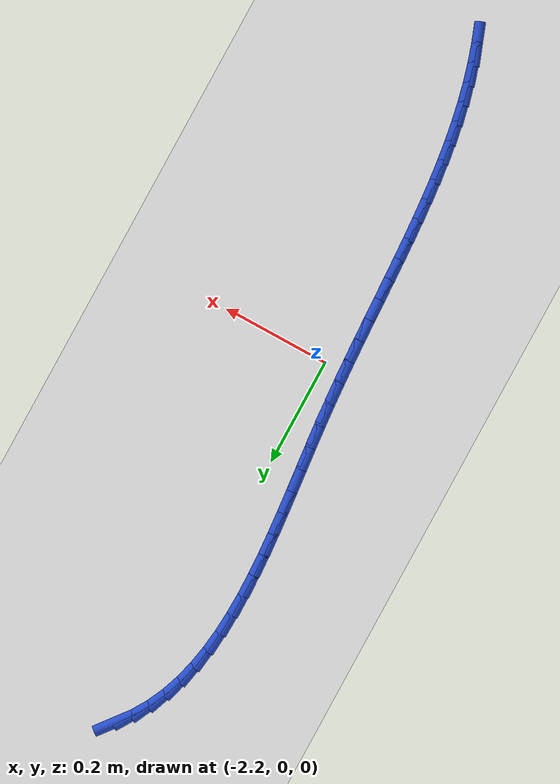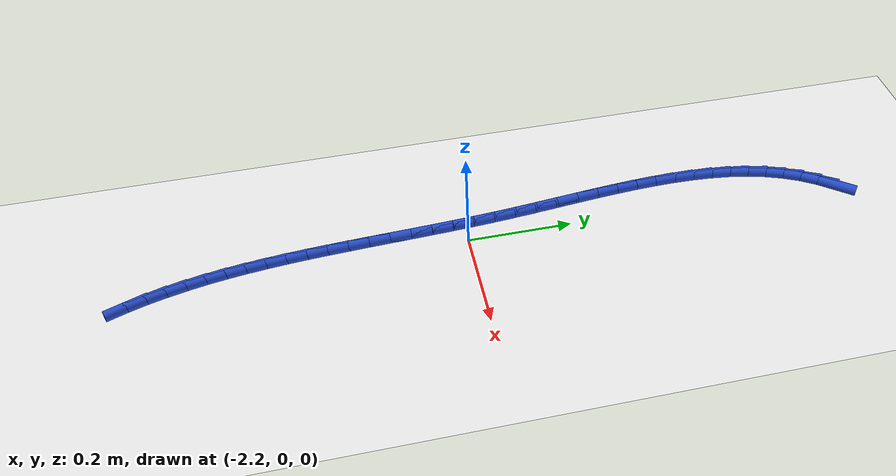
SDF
<sdf version="1.6">
 <world name="default">
  <model name="ground_plane">
   <static>1</static>
   <link name="link">
    <collision name="collision">
     <geometry><plane><normal>0 0 1</normal><size>100 100</size></plane></geometry>
     <surface><friction><ode><mu>100</mu><mu2>50</mu2></ode></friction></surface>
    </collision>
    <visual name="visual">
     <cast_shadows>0</cast_shadows>
     <geometry><plane><normal>0 0 1</normal><size>100 100</size></plane></geometry>
     <material>
      <script><uri>file://media/materials/scripts/gazebo.material</uri><name>Gazebo/WhiteGlow</name></script>
     </material>
    </visual>
   </link>
  </model>
  <model name="line">
   <link name="link_91">
    <pose>-2.178839840054045 0.7346579756073861 0.01 0 1.57 0.9020785091487951</pose>
    <collision name="collision">
     <geometry><cylinder><radius>0.01</radius><length>0.08</length></cylinder></geometry>
    </collision>
    <visual name="visual">
     <material>
      <script><name>Gazebo/Blue</name><uri>file://media/materials/scripts/gazebo.material</uri></script>
     </material>
     <geometry><cylinder><radius>0.01</radius><length>0.08</length></cylinder></geometry>
    </visual>
   </link>
   <link name="link_92">
    <pose>-2.2004275358975875 0.7073376340861671 0.01 0 1.57 1.0159643591724252</pose>
    <collision name="collision">
     <geometry><cylinder><radius>0.01</radius><length>0.08</length></cylinder></geometry>
    </collision>
    <visual name="visual">
     <material>
      <script><name>Gazebo/Blue</name><uri>file://media/materials/scripts/gazebo.material</uri></script>
     </material>
     <geometry><cylinder><radius>0.01</radius><length>0.08</length></cylinder></geometry>
    </visual>
   </link>
   <link name="link_93">
    <pose>-2.2185622456288914 0.6780774040636286 0.01 0 1.57 1.1227601798773306</pose>
    <collision name="collision">
     <geometry><cylinder><radius>0.01</radius><length>0.08</length></cylinder></geometry>
    </collision>
    <visual name="visual">
     <material>
      <script><name>Gazebo/Blue</name><uri>file://media/materials/scripts/gazebo.material</uri></script>
     </material>
     <geometry><cylinder><radius>0.01</radius><length>0.08</length></cylinder></geometry>
    </visual>
   </link>
   <link name="link_94">
    <pose>-2.2334916811926613 0.6470155221005749 0.01 0 1.57 1.2200898423174822</pose>
    <collision name="collision">
     <geometry><cylinder><radius>0.01</radius><length>0.08</length></cylinder></geometry>
    </collision>
    <visual name="visual">
     <material>
      <script><name>Gazebo/Blue</name><uri>file://media/materials/scripts/gazebo.material</uri></script>
     </material>
     <geometry><cylinder><radius>0.01</radius><length>0.08</length></cylinder></geometry>
    </visual>
   </link>
   <link name="link_95">
    <pose>-2.245463554533607 0.614290224757809 0.01 0 1.57 1.30669281832825</pose>
    <collision name="collision">
     <geometry><cylinder><radius>0.01</radius><length>0.08</length></cylinder></geometry>
    </collision>
    <visual name="visual">
     <material>
      <script><name>Gazebo/Blue</name><uri>file://media/materials/scripts/gazebo.material</uri></script>
     </material>
     <geometry><cylinder><radius>0.01</radius><length>0.08</length></cylinder></geometry>
    </visual>
   </link>
   <link name="link_96">
    <pose>-2.254725577596434 0.5800397485961352 0.01 0 1.57 1.382255184666243</pose>
    <collision name="collision">
     <geometry><cylinder><radius>0.01</radius><length>0.08</length></cylinder></geometry>
    </collision>
    <visual name="visual">
     <material>
      <script><name>Gazebo/Blue</name><uri>file://media/materials/scripts/gazebo.material</uri></script>
     </material>
     <geometry><cylinder><radius>0.01</radius><length>0.08</length></cylinder></geometry>
    </visual>
   </link>
   <link name="link_97">
    <pose>-2.2615254623258494 0.5444023301763563 0.01 0 1.57 1.447116923242679</pose>
    <collision name="collision">
     <geometry><cylinder><radius>0.01</radius><length>0.08</length></cylinder></geometry>
    </collision>
    <visual name="visual">
     <material>
      <script><name>Gazebo/Blue</name><uri>file://media/materials/scripts/gazebo.material</uri></script>
     </material>
     <geometry><cylinder><radius>0.01</radius><length>0.08</length></cylinder></geometry>
    </visual>
   </link>
   <link name="link_98">
    <pose>-2.266110920666562 0.5075162060592759 0.01 0 1.57 1.501984649858105</pose>
    <collision name="collision">
     <geometry><cylinder><radius>0.01</radius><length>0.08</length></cylinder></geometry>
    </collision>
    <visual name="visual">
     <material>
      <script><name>Gazebo/Blue</name><uri>file://media/materials/scripts/gazebo.material</uri></script>
     </material>
     <geometry><cylinder><radius>0.01</radius><length>0.08</length></cylinder></geometry>
    </visual>
   </link>
   <link name="link_99">
    <pose>-2.268729664563278 0.46951961280569837 0.01 0 1.57 1.5477116803301874</pose>
    <collision name="collision">
     <geometry><cylinder><radius>0.01</radius><length>0.08</length></cylinder></geometry>
    </collision>
    <visual name="visual">
     <material>
      <script><name>Gazebo/Blue</name><uri>file://media/materials/scripts/gazebo.material</uri></script>
     </material>
     <geometry><cylinder><radius>0.01</radius><length>0.08</length></cylinder></geometry>
    </visual>
   </link>
   <link name="link_100">
    <pose>-2.2696294059607043 0.4305507869764263 0.01 0 1.57 -1.5564378001405421</pose>
    <collision name="collision">
     <geometry><cylinder><radius>0.01</radius><length>0.08</length></cylinder></geometry>
    </collision>
    <visual name="visual">
     <material>
      <script><name>Gazebo/Blue</name><uri>file://media/materials/scripts/gazebo.material</uri></script>
     </material>
     <geometry><cylinder><radius>0.01</radius><length>0.08</length></cylinder></geometry>
    </visual>
   </link>
   <link name="link_101">
    <pose>-2.26905785680355 0.39074796513226423 0.01 0 1.57 -1.526499627401595</pose>
    <collision name="collision">
     <geometry><cylinder><radius>0.01</radius><length>0.08</length></cylinder></geometry>
    </collision>
    <visual name="visual">
     <material>
      <script><name>Gazebo/Blue</name><uri>file://media/materials/scripts/gazebo.material</uri></script>
     </material>
     <geometry><cylinder><radius>0.01</radius><length>0.08</length></cylinder></geometry>
    </visual>
   </link>
   <link name="link_102">
    <pose>-2.2672627290365206 0.35024938383401494 0.01 0 1.57 -1.5034056576064672</pose>
    <collision name="collision">
     <geometry><cylinder><radius>0.01</radius><length>0.08</length></cylinder></geometry>
    </collision>
    <visual name="visual">
     <material>
      <script><name>Gazebo/Blue</name><uri>file://media/materials/scripts/gazebo.material</uri></script>
     </material>
     <geometry><cylinder><radius>0.01</radius><length>0.08</length></cylinder></geometry>
    </visual>
   </link>
   <link name="link_103">
    <pose>-2.264491734604323 0.3091932796424828 0.01 0 1.57 -1.4866287677100554</pose>
    <collision name="collision">
     <geometry><cylinder><radius>0.01</radius><length>0.08</length></cylinder></geometry>
    </collision>
    <visual name="visual">
     <material>
      <script><name>Gazebo/Blue</name><uri>file://media/materials/scripts/gazebo.material</uri></script>
     </material>
     <geometry><cylinder><radius>0.01</radius><length>0.08</length></cylinder></geometry>
    </visual>
   </link>
   <link name="link_104">
    <pose>-2.2609925854516666 0.2677178891184704 0.01 0 1.57 -1.4757784507355776</pose>
    <collision name="collision">
     <geometry><cylinder><radius>0.01</radius><length>0.08</length></cylinder></geometry>
    </collision>
    <visual name="visual">
     <material>
      <script><name>Gazebo/Blue</name><uri>file://media/materials/scripts/gazebo.material</uri></script>
     </material>
     <geometry><cylinder><radius>0.01</radius><length>0.08</length></cylinder></geometry>
    </visual>
   </link>
   <link name="link_105">
    <pose>-2.257012993523257 0.2259614488227824 0.01 0 1.57 -1.470598441089765</pose>
    <collision name="collision">
     <geometry><cylinder><radius>0.01</radius><length>0.08</length></cylinder></geometry>
    </collision>
    <visual name="visual">
     <material>
      <script><name>Gazebo/Blue</name><uri>file://media/materials/scripts/gazebo.material</uri></script>
     </material>
     <geometry><cylinder><radius>0.01</radius><length>0.08</length></cylinder></geometry>
    </visual>
   </link>
   <link name="link_106">
    <pose>-2.2528006707638024 0.18406219531622148 0.01 0 1.57 -1.4709632592744175</pose>
    <collision name="collision">
     <geometry><cylinder><radius>0.01</radius><length>0.08</length></cylinder></geometry>
    </collision>
    <visual name="visual">
     <material>
      <script><name>Gazebo/Blue</name><uri>file://media/materials/scripts/gazebo.material</uri></script>
     </material>
     <geometry><cylinder><radius>0.01</radius><length>0.08</length></cylinder></geometry>
    </visual>
   </link>
   <link name="link_107">
    <pose>-2.248603329118008 0.14215836515959196 0.01 0 1.57 -1.4768758923383496</pose>
    <collision name="collision">
     <geometry><cylinder><radius>0.01</radius><length>0.08</length></cylinder></geometry>
    </collision>
    <visual name="visual">
     <material>
      <script><name>Gazebo/Blue</name><uri>file://media/materials/scripts/gazebo.material</uri></script>
     </material>
     <geometry><cylinder><radius>0.01</radius><length>0.08</length></cylinder></geometry>
    </visual>
   </link>
   <link name="link_108">
    <pose>-2.2446686805305847 0.10038819491369659 0.01 0 1.57 -1.4883190256080854</pose>
    <collision name="collision">
     <geometry><cylinder><radius>0.01</radius><length>0.08</length></cylinder></geometry>
    </collision>
    <visual name="visual">
     <material>
      <script><name>Gazebo/Blue</name><uri>file://media/materials/scripts/gazebo.material</uri></script>
     </material>
     <geometry><cylinder><radius>0.01</radius><length>0.08</length></cylinder></geometry>
    </visual>
   </link>
   <link name="link_109">
    <pose>-2.2412380441411743 0.05888763856509549 0.01 0 1.57 -1.5015631289805005</pose>
    <collision name="collision">
     <geometry><cylinder><radius>0.01</radius><length>0.08</length></cylinder></geometry>
    </collision>
    <visual name="visual">
     <material>
      <script><name>Gazebo/Blue</name><uri>file://media/materials/scripts/gazebo.material</uri></script>
     </material>
     <geometry><cylinder><radius>0.01</radius><length>0.08</length></cylinder></geometry>
    </visual>
   </link>
   <link name="link_110">
    <pose>-2.2383841786601066 0.017732464987421113 0.01 0 1.57 -1.5123856461197271</pose>
    <collision name="collision">
     <geometry><cylinder><radius>0.01</radius><length>0.08</length></cylinder></geometry>
    </collision>
    <visual name="visual">
     <material>
      <script><name>Gazebo/Blue</name><uri>file://media/materials/scripts/gazebo.material</uri></script>
     </material>
     <geometry><cylinder><radius>0.01</radius><length>0.08</length></cylinder></geometry>
    </visual>
   </link>
   <link name="link_111">
    <pose>-2.2359983782185555 -0.023066349532141227 0.01 0 1.57 -1.5205003320529569</pose>
    <collision name="collision">
     <geometry><cylinder><radius>0.01</radius><length>0.08</length></cylinder></geometry>
    </collision>
    <visual name="visual">
     <material>
      <script><name>Gazebo/Blue</name><uri>file://media/materials/scripts/gazebo.material</uri></script>
     </material>
     <geometry><cylinder><radius>0.01</radius><length>0.08</length></cylinder></geometry>
    </visual>
   </link>
   <link name="link_112">
    <pose>-2.233962958909521 -0.06350103434751572 0.01 0 1.57 -1.5258292361275618</pose>
    <collision name="collision">
     <geometry><cylinder><radius>0.01</radius><length>0.08</length></cylinder></geometry>
    </collision>
    <visual name="visual">
     <material>
      <script><name>Gazebo/Blue</name><uri>file://media/materials/scripts/gazebo.material</uri></script>
     </material>
     <geometry><cylinder><radius>0.01</radius><length>0.08</length></cylinder></geometry>
    </visual>
   </link>
   <link name="link_113">
    <pose>-2.2321602368260023 -0.10356381881262608 0.01 0 1.57 -1.5282922952049893</pose>
    <collision name="collision">
     <geometry><cylinder><radius>0.01</radius><length>0.08</length></cylinder></geometry>
    </collision>
    <visual name="visual">
     <material>
      <script><name>Gazebo/Blue</name><uri>file://media/materials/scripts/gazebo.material</uri></script>
     </material>
     <geometry><cylinder><radius>0.01</radius><length>0.08</length></cylinder></geometry>
    </visual>
   </link>
   <link name="link_114">
    <pose>-2.2304725280609996 -0.14324693228139704 0.01 0 1.57 -1.527805896216756</pose>
    <collision name="collision">
     <geometry><cylinder><radius>0.01</radius><length>0.08</length></cylinder></geometry>
    </collision>
    <visual name="visual">
     <material>
      <script><name>Gazebo/Blue</name><uri>file://media/materials/scripts/gazebo.material</uri></script>
     </material>
     <geometry><cylinder><radius>0.01</radius><length>0.08</length></cylinder></geometry>
    </visual>
   </link>
   <link name="link_115">
    <pose>-2.228782148707513 -0.18254260410775044 0.01 0 1.57 -1.5242820235541341</pose>
    <collision name="collision">
     <geometry><cylinder><radius>0.01</radius><length>0.08</length></cylinder></geometry>
    </collision>
    <visual name="visual">
     <material>
      <script><name>Gazebo/Blue</name><uri>file://media/materials/scripts/gazebo.material</uri></script>
     </material>
     <geometry><cylinder><radius>0.01</radius><length>0.08</length></cylinder></geometry>
    </visual>
   </link>
   <link name="link_116">
    <pose>-2.2269714148585398 -0.22144306364561084 0.01 0 1.57 -1.5176281313855693</pose>
    <collision name="collision">
     <geometry><cylinder><radius>0.01</radius><length>0.08</length></cylinder></geometry>
    </collision>
    <visual name="visual">
     <material>
      <script><name>Gazebo/Blue</name><uri>file://media/materials/scripts/gazebo.material</uri></script>
     </material>
     <geometry><cylinder><radius>0.01</radius><length>0.08</length></cylinder></geometry>
    </visual>
   </link>
   <link name="link_117">
    <pose>-2.224922642607081 -0.2599405402489021 0.01 0 1.57 -1.5077479076148295</pose>
    <collision name="collision">
     <geometry><cylinder><radius>0.01</radius><length>0.08</length></cylinder></geometry>
    </collision>
    <visual name="visual">
     <material>
      <script><name>Gazebo/Blue</name><uri>file://media/materials/scripts/gazebo.material</uri></script>
     </material>
     <geometry><cylinder><radius>0.01</radius><length>0.08</length></cylinder></geometry>
    </visual>
   </link>
   <link name="link_118">
    <pose>-2.222518148046136 -0.2980272632715488 0.01 0 1.57 -1.4945431263242273</pose>
    <collision name="collision">
     <geometry><cylinder><radius>0.01</radius><length>0.08</length></cylinder></geometry>
    </collision>
    <visual name="visual">
     <material>
      <script><name>Gazebo/Blue</name><uri>file://media/materials/scripts/gazebo.material</uri></script>
     </material>
     <geometry><cylinder><radius>0.01</radius><length>0.08</length></cylinder></geometry>
    </visual>
   </link>
   <link name="link_119">
    <pose>-2.2196402472687042 -0.33569546206747297 0.01 0 1.57 -1.4779168122918045</pose>
    <collision name="collision">
     <geometry><cylinder><radius>0.01</radius><length>0.08</length></cylinder></geometry>
    </collision>
    <visual name="visual">
     <material>
      <script><name>Gazebo/Blue</name><uri>file://media/materials/scripts/gazebo.material</uri></script>
     </material>
     <geometry><cylinder><radius>0.01</radius><length>0.08</length></cylinder></geometry>
    </visual>
   </link>
   <link name="link_120">
    <pose>-2.2161712563677853 -0.3729373659905992 0.01 0 1.57 -1.457777953450756</pose>
    <collision name="collision">
     <geometry><cylinder><radius>0.01</radius><length>0.08</length></cylinder></geometry>
    </collision>
    <visual name="visual">
     <material>
      <script><name>Gazebo/Blue</name><uri>file://media/materials/scripts/gazebo.material</uri></script>
     </material>
     <geometry><cylinder><radius>0.01</radius><length>0.08</length></cylinder></geometry>
    </visual>
   </link>
   <link name="link_121">
    <pose>-2.2119934914363792 -0.40974520439485096 0.01 0 1.57 -1.4340479785679279</pose>
    <collision name="collision">
     <geometry><cylinder><radius>0.01</radius><length>0.08</length></cylinder></geometry>
    </collision>
    <visual name="visual">
     <material>
      <script><name>Gazebo/Blue</name><uri>file://media/materials/scripts/gazebo.material</uri></script>
     </material>
     <geometry><cylinder><radius>0.01</radius><length>0.08</length></cylinder></geometry>
    </visual>
   </link>
   <link name="link_122">
    <pose>-2.2069892685674852 -0.44611120663415343 0.01 0 1.57 -1.406669145890333</pose>
    <collision name="collision">
     <geometry><cylinder><radius>0.01</radius><length>0.08</length></cylinder></geometry>
    </collision>
    <visual name="visual">
     <material>
      <script><name>Gazebo/Blue</name><uri>file://media/materials/scripts/gazebo.material</uri></script>
     </material>
     <geometry><cylinder><radius>0.01</radius><length>0.08</length></cylinder></geometry>
    </visual>
   </link>
   <link name="link_123">
    <pose>-2.2010409038541026 -0.482027602062428 0.01 0 1.57 -1.3756148379651798</pose>
    <collision name="collision">
     <geometry><cylinder><radius>0.01</radius><length>0.08</length></cylinder></geometry>
    </collision>
    <visual name="visual">
     <material>
      <script><name>Gazebo/Blue</name><uri>file://media/materials/scripts/gazebo.material</uri></script>
     </material>
     <geometry><cylinder><radius>0.01</radius><length>0.08</length></cylinder></geometry>
    </visual>
   </link>
   <link name="link_124">
    <pose>-2.1940307133892314 -0.5174866200335997 0.01 0 1.57 -1.3409015036684935</pose>
    <collision name="collision">
     <geometry><cylinder><radius>0.01</radius><length>0.08</length></cylinder></geometry>
    </collision>
    <visual name="visual">
     <material>
      <script><name>Gazebo/Blue</name><uri>file://media/materials/scripts/gazebo.material</uri></script>
     </material>
     <geometry><cylinder><radius>0.01</radius><length>0.08</length></cylinder></geometry>
    </visual>
   </link>
   <link name="link_125">
    <pose>-2.1858410132658705 -0.5524804899015919 0.01 0 1.57 -1.302601618582218</pose>
    <collision name="collision">
     <geometry><cylinder><radius>0.01</radius><length>0.08</length></cylinder></geometry>
    </collision>
    <visual name="visual">
     <material>
      <script><name>Gazebo/Blue</name><uri>file://media/materials/scripts/gazebo.material</uri></script>
     </material>
     <geometry><cylinder><radius>0.01</radius><length>0.08</length></cylinder></geometry>
    </visual>
   </link>
   <link name="link_126">
    <pose>-2.1763541195770197 -0.5870014410203296 0.01 0 1.57 -1.2608565667151115</pose>
    <collision name="collision">
     <geometry><cylinder><radius>0.01</radius><length>0.08</length></cylinder></geometry>
    </collision>
    <visual name="visual">
     <material>
      <script><name>Gazebo/Blue</name><uri>file://media/materials/scripts/gazebo.material</uri></script>
     </material>
     <geometry><cylinder><radius>0.01</radius><length>0.08</length></cylinder></geometry>
    </visual>
   </link>
   <link name="link_127">
    <pose>-2.1654523484156787 -0.6210417027437344 0.01 0 1.57 -1.2158878469187202</pose>
    <collision name="collision">
     <geometry><cylinder><radius>0.01</radius><length>0.08</length></cylinder></geometry>
    </collision>
    <visual name="visual">
     <material>
      <script><name>Gazebo/Blue</name><uri>file://media/materials/scripts/gazebo.material</uri></script>
     </material>
     <geometry><cylinder><radius>0.01</radius><length>0.08</length></cylinder></geometry>
    </visual>
   </link>
  </model>
 </world>
</sdf>
